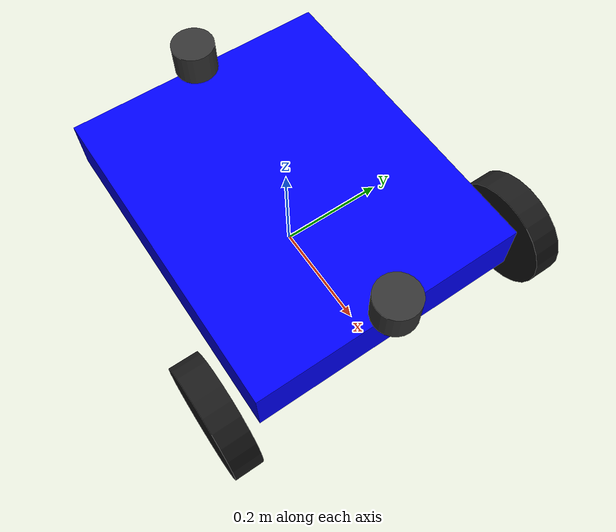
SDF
<?xml version="1.0" ?>
<sdf version="1.7">
    <model name="square_bot">
        <pose>0 0 0 0 0 0</pose>

        <link name="chassis">
            <pose relative_to='__model__'>0 0 0.15 0 0 0</pose>
            <inertial>
                <mass>1.5</mass>
                <inertia>
                    <ixx>0.1</ixx>
                    <iyy>0.1</iyy>
                    <izz>0.1</izz>
                </inertia>
            </inertial>

            <visual name="visual">
                <geometry>
                    <box>
                        <size>0.6 0.5 0.1</size>
                    </box>
                </geometry>
                <material>
                    <ambient>0 0 1 1</ambient>
                    <diffuse>0 0 1 1</diffuse>
                </material>
            </visual>

            <collision name="collision">
                <geometry>
                    <box>
                        <size>0.6 0.5 0.1</size>
                    </box>
                </geometry>
            </collision>
        </link>

        <!-- FRONT LIDAR -->
        <link name="front_lidar_link">
            <pose relative_to="chassis">0.3 0 0.08 0 0 0</pose>
            <inertial>
                <mass>0.1</mass>
                <inertia>
                    <ixx>0.001</ixx>
                    <iyy>0.001</iyy>
                    <izz>0.001</izz>
                </inertia>
            </inertial>
            <visual name="visual">
                <geometry>
                    <cylinder>
                        <radius>0.04</radius>
                        <length>0.06</length>
                    </cylinder>
                </geometry>
                <material>
                    <ambient>0.2 0.2 0.2 1</ambient>
                    <diffuse>0.2 0.2 0.2 1</diffuse>
                </material>
            </visual>
            <collision name="collision">
                <geometry>
                    <cylinder>
                        <radius>0.04</radius>
                        <length>0.06</length>
                    </cylinder>
                </geometry>
            </collision>
            <sensor name="front_lidar" type="gpu_lidar">
                <pose>0 0 0 0 0 0</pose>
                <topic>front_lidar/scan</topic>
                <update_rate>10</update_rate>
                <lidar>
                    <scan>
                        <horizontal>
                            <samples>360</samples>
                            <resolution>1</resolution>
                            <min_angle>-1.5707963</min_angle>
                            <max_angle>1.5707963</max_angle>
                        </horizontal>
                    </scan>
                    <range>
                        <min>0.1</min>
                        <max>10.0</max>
                        <resolution>0.01</resolution>
                    </range>
                    <noise>
                        <type>gaussian</type>
                        <mean>0.0</mean>
                        <stddev>0.01</stddev>
                    </noise>
                </lidar>
                <visualize>true</visualize>
            </sensor>
        </link>

        <!-- BACK LIDAR -->
        <link name="back_lidar_link">
            <pose relative_to="chassis">-0.3 0 0.08 0 0 3.1415927</pose>
            <inertial>
                <mass>0.1</mass>
                <inertia>
                    <ixx>0.001</ixx>
                    <iyy>0.001</iyy>
                    <izz>0.001</izz>
                </inertia>
            </inertial>
            <visual name="visual">
                <geometry>
                    <cylinder>
                        <radius>0.04</radius>
                        <length>0.06</length>
                    </cylinder>
                </geometry>
                <material>
                    <ambient>0.2 0.2 0.2 1</ambient>
                    <diffuse>0.2 0.2 0.2 1</diffuse>
                </material>
            </visual>
            <collision name="collision">
                <geometry>
                    <cylinder>
                        <radius>0.04</radius>
                        <length>0.06</length>
                    </cylinder>
                </geometry>
            </collision>
            <sensor name="back_lidar" type="gpu_lidar">
                <pose>0 0 0 0 0 0</pose>
                <topic>back_lidar/scan</topic>
                <update_rate>10</update_rate>
                <lidar>
                    <scan>
                        <horizontal>
                            <samples>360</samples>
                            <resolution>1</resolution>
                            <min_angle>-1.5707963</min_angle>
                            <max_angle>1.5707963</max_angle>
                        </horizontal>
                    </scan>
                    <range>
                        <min>0.1</min>
                        <max>10.0</max>
                        <resolution>0.01</resolution>
                    </range>
                    <noise>
                        <type>gaussian</type>
                        <mean>0.0</mean>
                        <stddev>0.01</stddev>
                    </noise>
                </lidar>
                <visualize>true</visualize>
            </sensor>
        </link>

        <joint name="front_lidar_joint" type="fixed">
            <parent>chassis</parent>
            <child>front_lidar_link</child>
        </joint>

        <joint name="back_lidar_joint" type="fixed">
            <parent>chassis</parent>
            <child>back_lidar_link</child>
        </joint>

        <!-- DRIVE WHEELS -->
        <link name="front_left_wheel">
            <pose relative_to="chassis">0.25 0.3 -0.05 0 0 0</pose>
            <inertial>
                <mass>0.3</mass>
                <inertia>
                    <ixx>0.01</ixx>
                    <iyy>0.01</iyy>
                    <izz>0.02</izz>
                </inertia>
            </inertial>
            <visual name="visual">
                <pose>0 0 0 1.5707963 0 0</pose>
                <geometry>
                    <cylinder>
                        <radius>0.1</radius>
                        <length>0.05</length>
                    </cylinder>
                </geometry>
                <material>
                    <ambient>0.1 0.1 0.1 1</ambient>
                    <diffuse>0.1 0.1 0.1 1</diffuse>
                </material>
            </visual>
            <collision name="collision">
                <pose>0 0 0 1.5707963 0 0</pose>
                <geometry>
                    <cylinder>
                        <radius>0.1</radius>
                        <length>0.05</length>
                    </cylinder>
                </geometry>
                <surface>
                    <friction>
                        <ode>
                            <mu>1.0</mu>
                            <mu2>1.0</mu2>
                        </ode>
                    </friction>
                </surface>
            </collision>
        </link>

        <link name="front_right_wheel">
            <pose relative_to="chassis">0.25 -0.3 -0.05 0 0 0</pose>
            <inertial>
                <mass>0.3</mass>
                <inertia>
                    <ixx>0.01</ixx>
                    <iyy>0.01</iyy>
                    <izz>0.02</izz>
                </inertia>
            </inertial>
            <visual name="visual">
                <pose>0 0 0 1.5707963 0 0</pose>
                <geometry>
                    <cylinder>
                        <radius>0.1</radius>
                        <length>0.05</length>
                    </cylinder>
                </geometry>
                <material>
                    <ambient>0.1 0.1 0.1 1</ambient>
                    <diffuse>0.1 0.1 0.1 1</diffuse>
                </material>
            </visual>
            <collision name="collision">
                <pose>0 0 0 1.5707963 0 0</pose>
                <geometry>
                    <cylinder>
                        <radius>0.1</radius>
                        <length>0.05</length>
                    </cylinder>
                </geometry>
                <surface>
                    <friction>
                        <ode>
                            <mu>1.0</mu>
                            <mu2>1.0</mu2>
                        </ode>
                    </friction>
                </surface>
            </collision>
        </link>

        <!-- REAR CASTER (replaces rear wheels) -->
        <link name="rear_caster">
            <!-- Centred at rear, z offset so sphere sits flush with drive wheels -->
            <pose relative_to="chassis">-0.25 0 -0.05 0 0 0</pose>
            <inertial>
                <mass>0.1</mass>
                <inertia>
                    <ixx>0.001</ixx>
                    <iyy>0.001</iyy>
                    <izz>0.001</izz>
                </inertia>
            </inertial>
            <visual name="visual">
                <geometry>
                    <sphere>
                        <radius>0.1</radius>
                    </sphere>
                </geometry>
                <material>
                    <ambient>0.1 0.1 0.1 1</ambient>
                    <diffuse>0.1 0.1 0.1 1</diffuse>
                </material>
            </visual>
            <collision name="collision">
                <geometry>
                    <sphere>
                        <radius>0.1</radius>
                    </sphere>
                </geometry>
                <surface>
                    <friction>
                        <ode>
                            <!-- Zero friction — slides freely in any direction -->
                            <mu>0.0</mu>
                            <mu2>0.0</mu2>
                        </ode>
                    </friction>
                </surface>
            </collision>
        </link>

        <joint name="front_left_joint" type="revolute">
            <parent>chassis</parent>
            <child>front_left_wheel</child>
            <axis>
                <xyz expressed_in="__model__">0 1 0</xyz>
            </axis>
        </joint>

        <joint name="front_right_joint" type="revolute">
            <parent>chassis</parent>
            <child>front_right_wheel</child>
            <axis>
                <xyz expressed_in="__model__">0 1 0</xyz>
            </axis>
        </joint>

        <joint name="rear_caster_joint" type="fixed">
            <parent>chassis</parent>
            <child>rear_caster</child>
        </joint>

        <!-- PLUGINS -->
        <plugin filename="libignition-gazebo-diff-drive-system.so"
                name="ignition::gazebo::systems::DiffDrive">
            <left_joint>front_left_joint</left_joint>
            <right_joint>front_right_joint</right_joint>
            <wheel_separation>0.6</wheel_separation>
            <wheel_radius>0.1</wheel_radius>
            <odom_publish_frequency>50</odom_publish_frequency>
            <topic>cmd_vel</topic>
        </plugin>

        <plugin filename="libignition-gazebo-sensors-system.so"
                name="ignition::gazebo::systems::Sensors">
            <render_engine>ogre2</render_engine>
        </plugin>

    </model>
</sdf>
